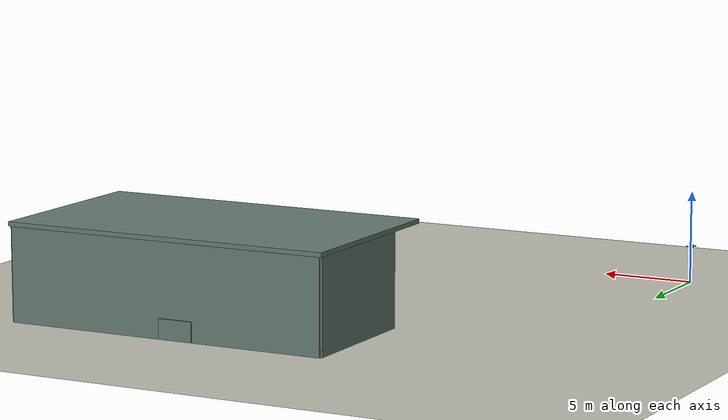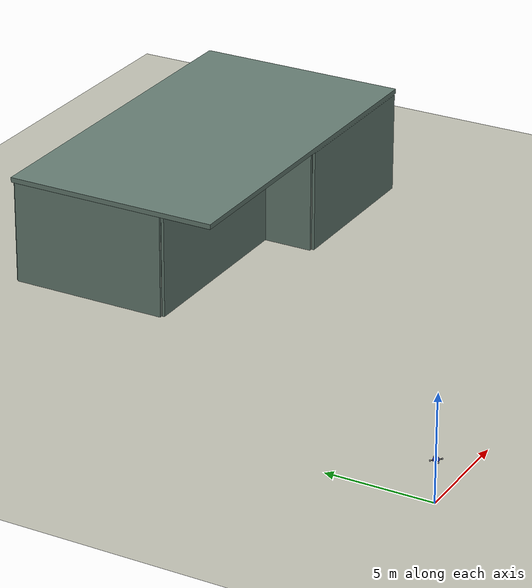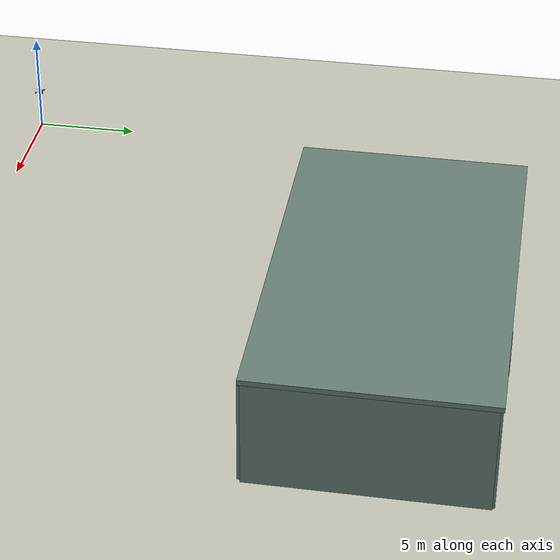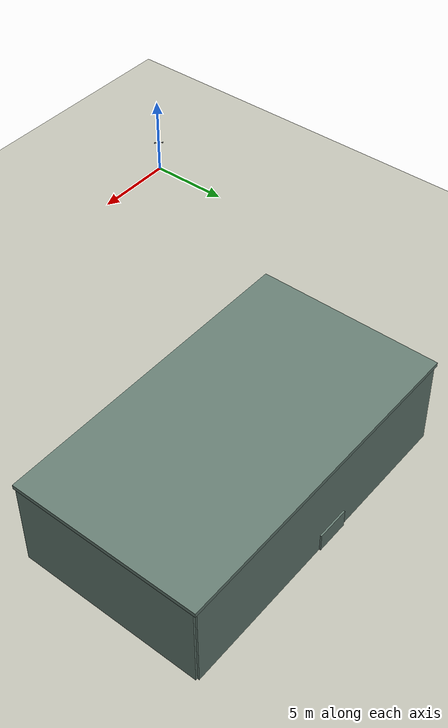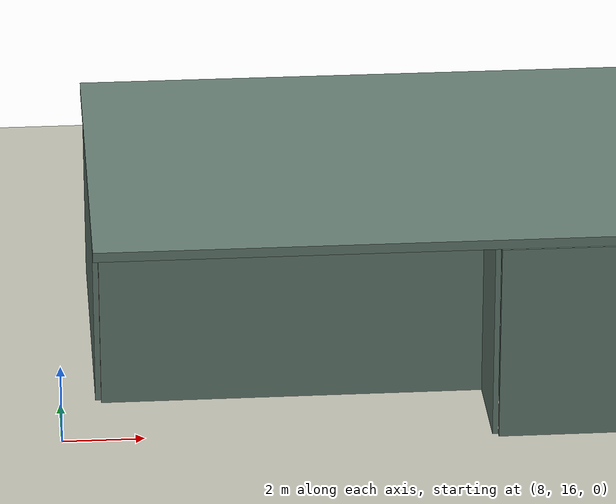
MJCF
<mujoco model="metric quadrotor world"><option timestep=".004" gravity="0 0 -9.81" /><visual /><worldbody><light pos="0 0 12" dir="0 0 -1" directional="true" /><geom name="floor" type="plane" pos="0 0 0.04100000113248825" size="0 0 .1" rgba=".75 .75 .70 1" /><geom name="obstacle_0" type="box" pos="13.774999618530273 18.030000686645508 2.499999910593033" size="4.767999649047852 0.06500053405761719 2.49249991774559" rgba=".40 .49 .45 1" /><geom name="obstacle_1" type="box" pos="22.674999237060547 15.479999542236328 2.499999910593033" size="4.118000030517578 0.06499958038330078 2.49249991774559" rgba=".40 .49 .45 1" /><geom name="obstacle_2" type="box" pos="18.479999542236328 16.82499933242798 2.499999910593033" size="0.06500053405761719 1.2679991722106934 2.49249991774559" rgba=".40 .49 .45 1" /><geom name="obstacle_3" type="box" pos="26.8700008392334 20.675000190734863 2.499999910593033" size="0.06500053405761719 5.1180009841918945 2.49249991774559" rgba=".40 .49 .45 1" /><geom name="obstacle_4" type="box" pos="8.930000305175781 21.949999809265137 2.499999910593033" size="0.06499958038330078 3.8429994583129883 2.49249991774559" rgba=".40 .49 .45 1" /><geom name="obstacle_5" type="box" pos="17.899999141693115 20.700000762939453 5.119999885559082" size="9.074999332427979 5.25 0.11999988555908203" rgba=".40 .49 .45 1" /><geom name="obstacle_6" type="box" pos="17.90000009536743 25.79124927520752 2.509999990463257" size="8.925000667572021 0.10624980926513672 2.509999990463257" rgba=".40 .49 .45 1" /><geom name="obstacle_7" type="box" pos="13.020999908447266 25.61625099182129 1.434999942779541" size="1.0364999771118164 0.09874916076660156 1.4249999523162842" rgba=".40 .49 .45 1" /><geom name="obstacle_8" type="box" pos="22.847999572753906 25.61625099182129 1.434999942779541" size="0.9775009155273438 0.09874916076660156 1.4249999523162842" rgba=".40 .49 .45 1" /><geom name="obstacle_9" type="box" pos="18.049999237060547 25.059999465942383 2.509999990463257" size="0.3600006103515625 0.3600006103515625 2.484999895095825" rgba=".40 .49 .45 1" /><geom name="obstacle_10" type="box" pos="15.820000171661377 23.100000381469727 0.2774999886751175" size="0.440000057220459 0.4400005340576172 0.24249999225139618" rgba=".40 .49 .45 1" /><geom name="obstacle_11" type="box" pos="16.68000030517578 23.072477340698242 0.4125000089406967" size="0.4400005340576172 0.4424781799316406 0.3775000125169754" rgba=".40 .49 .45 1" /><geom name="obstacle_12" type="box" pos="17.149999618530273 22.239999771118164 0.2774999886751175" size="0.5100002288818359 0.5100002288818359 0.24249999225139618" rgba=".40 .49 .45 1" /><geom name="obstacle_13" type="box" pos="16.68000030517578 21.31752300262451 0.4125000089406967" size="0.4500007629394531 0.45247745513916016 0.3775000125169754" rgba=".40 .49 .45 1" /><geom name="obstacle_14" type="box" pos="15.869999408721924 21.479999542236328 0.2774999886751175" size="0.42999982833862305 0.43000030517578125 0.24249999225139618" rgba=".40 .49 .45 1" /><geom name="obstacle_15" type="box" pos="12.793484210968018 20.49349880218506 0.36249999701976776" size="0.3614840507507324 0.3625001907348633 0.32750000059604645" rgba=".40 .49 .45 1" /><geom name="obstacle_16" type="box" pos="13.395999908447266 20.44499969482422 0.22750000655651093" size="0.35200023651123047 0.35199928283691406 0.1925000101327896" rgba=".40 .49 .45 1" /><geom name="obstacle_17" type="box" pos="12.2985258102417 20.780552864074707 0.36249999701976776" size="0.3924741744995117 0.39244747161865234 0.32750000059604645" rgba=".40 .49 .45 1" /><geom name="obstacle_18" type="box" pos="12.166000366210938 21.635000228881836 0.22750000655651093" size="0.4099998474121094 0.4099998474121094 0.1925000101327896" rgba=".40 .49 .45 1" /><geom name="obstacle_19" type="box" pos="16.12000036239624 22.25 0.22500000149011612" size="0.45999956130981445 0.5300006866455078 0.20750000327825546" rgba=".40 .49 .45 1" /><geom name="obstacle_20" type="box" pos="13.025810241699219 21.585689544677734 0.20875000208616257" size="0.595250129699707 0.5761146545410156 0.1912500038743019" rgba=".40 .49 .45 1" /><geom name="obstacle_21" type="box" pos="18.788297653198242 23.062698364257812 0.8149309158325195" size="0.6345043182373047 0.8676986694335938 0.7899309396743774" rgba=".40 .49 .45 1" /><geom name="obstacle_22" type="box" pos="18.869529724121094 20.73341941833496 0.798881471157074" size="0.6759548187255859 0.8713455200195312 0.7738814949989319" rgba=".40 .49 .45 1" /><geom name="obstacle_23" type="box" pos="17.137246131896973 25.045644760131836 0.5570493461564183" size="0.9382410049438477 0.9404067993164062 0.5320493457838893" rgba=".40 .49 .45 1" /><geom name="obstacle_24" type="box" pos="10.051774024963379 24.614748001098633 0.5560160400345922" size="0.8728389739990234 0.8869361877441406 0.5310160396620631" rgba=".40 .49 .45 1" /><geom name="obstacle_25" type="box" pos="25.558094024658203 16.812252044677734 0.556619537062943" size="0.9007186889648438 0.8745365142822266 0.531619536690414" rgba=".40 .49 .45 1" /><geom name="obstacle_26" type="box" pos="15.862651348114014 18.780210494995117 0.6503057004883885" size="0.6154046058654785 0.5995712280273438 0.6253057001158595" rgba=".40 .49 .45 1" /><geom name="obstacle_27" type="box" pos="26.152036666870117 24.305158615112305 0.9788968088105321" size="0.45601654052734375 0.4682960510253906 0.9538968084380031" rgba=".40 .49 .45 1" /><geom name="obstacle_28" type="box" pos="26.146730422973633 19.20548725128174 0.9790637018159032" size="0.46447181701660156 0.4642801284790039 0.9540637014433742" rgba=".40 .49 .45 1" /><geom name="obstacle_29" type="box" pos="11.099941730499268 20.150063514709473 1.069340541958809" size="0.40185022354125977 0.3896608352661133 1.0443405359983444" rgba=".40 .49 .45 1" /><geom name="obstacle_30" type="box" pos="9.940345287322998 23.302902221679688 1.069340541958809" size="0.36155080795288086 0.39681243896484375 1.0443405359983444" rgba=".40 .49 .45 1" /><geom name="obstacle_31" type="box" pos="25.49000072479248 21.800000190734863 0.4599999971687794" size="0.5399999618530273 1.8000001907348633 0.41999999806284904" rgba=".40 .49 .45 1" /><geom name="obstacle_32" type="box" pos="25.149999618530273 18.1299991607666 0.9875000240281224" size="0.23999977111816406 0.23999977111816406 0.9625000236555934" rgba=".40 .49 .45 1" /><geom name="obstacle_33" type="box" pos="18.799999237060547 17.799999237060547 0.9875000240281224" size="0.23999977111816406 0.23999977111816406 0.9625000236555934" rgba=".40 .49 .45 1" /><geom name="obstacle_34" type="box" pos="9.800000190734863 20.0 0.9875000240281224" size="0.23999977111816406 0.23999977111816406 0.9625000236555934" rgba=".40 .49 .45 1" /><body name="quad" pos="0 0 2"><freejoint /><inertial pos="0 0 0" mass="1" diaginertia=".02 .02 .035" /><geom name="quad_body" type="sphere" size=".14" rgba=".1 .2 .8 1" /><geom name="arm_0" type="capsule" fromto="0 0 0 0.18 0.18 0.0" size=".018" rgba=".15 .15 .17 1" /><site name="motor_0" pos="0.18 0.18 0.0" size=".04" /><geom name="arm_1" type="capsule" fromto="0 0 0 -0.18 0.18 0.0" size=".018" rgba=".15 .15 .17 1" /><site name="motor_1" pos="-0.18 0.18 0.0" size=".04" /><geom name="arm_2" type="capsule" fromto="0 0 0 -0.18 -0.18 0.0" size=".018" rgba=".15 .15 .17 1" /><site name="motor_2" pos="-0.18 -0.18 0.0" size=".04" /><geom name="arm_3" type="capsule" fromto="0 0 0 0.18 -0.18 0.0" size=".018" rgba=".15 .15 .17 1" /><site name="motor_3" pos="0.18 -0.18 0.0" size=".04" /></body></worldbody><actuator><general name="thrust_0" site="motor_0" gear="0 0 1 0 0 0.02" ctrllimited="true" ctrlrange="0 8" /><general name="thrust_1" site="motor_1" gear="0 0 1 0 0 -0.02" ctrllimited="true" ctrlrange="0 8" /><general name="thrust_2" site="motor_2" gear="0 0 1 0 0 0.02" ctrllimited="true" ctrlrange="0 8" /><general name="thrust_3" site="motor_3" gear="0 0 1 0 0 -0.02" ctrllimited="true" ctrlrange="0 8" /></actuator></mujoco>
